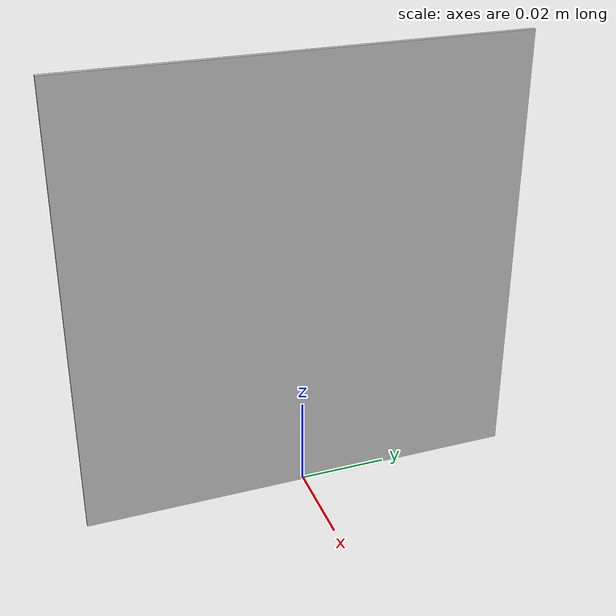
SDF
<?xml version="1.0" ?>
<sdf version="1.5">
  <model name="apriltag_2">
    <static>true</static>
    <link name="link">
      <pose>0 0 0.05 0 0 0</pose>
      <collision name="collision">
        <geometry>
          <box>
            <size>0.001 0.1 0.1</size>
          </box>
        </geometry>
      </collision>
      <visual name="visual">
        <geometry>
          <box>
            <size>0.001 0.1 0.1</size>
          </box>
        </geometry>
        <material>
          <script>
            <uri>model://apriltag_2/materials/scripts</uri>
            <uri>model://apriltag_2/materials/textures</uri>
            <name>apriltag_2/Diffuse</name>
          </script>
        </material>
      </visual>
    </link>
  </model>
</sdf>
